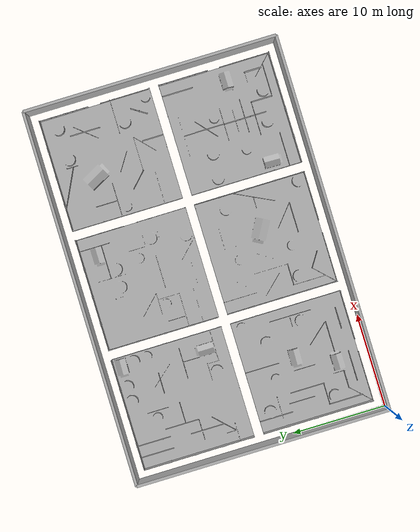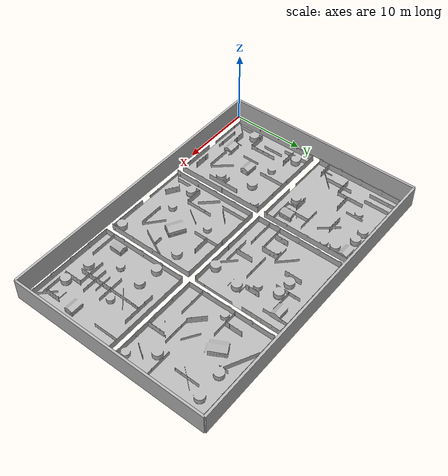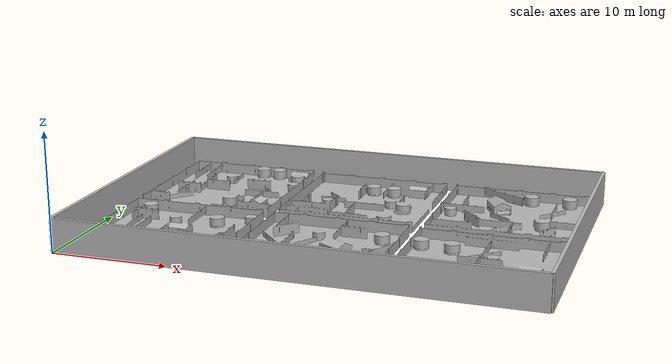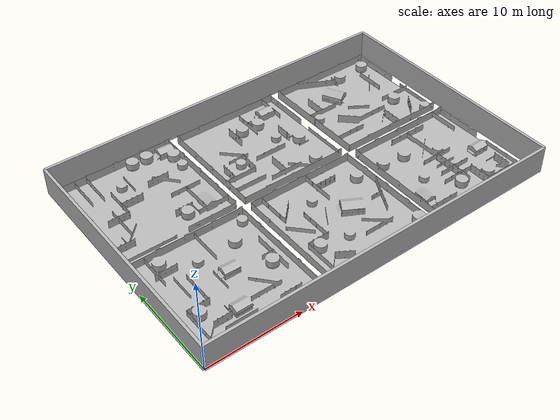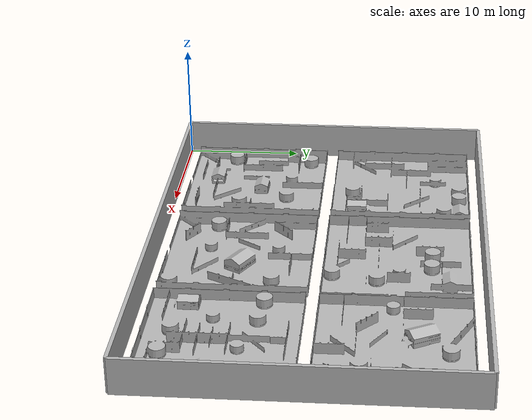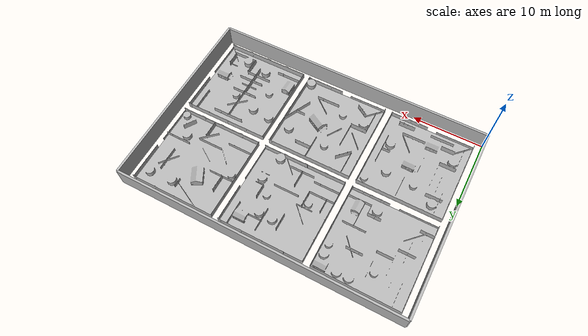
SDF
<?xml version='1.0' encoding='utf-8'?>
<sdf version="1.6">
  <world name="fixed_size_world">
    <include>
      <uri>model://sun</uri>
    </include>

<model name="10">
  <pose>7 7 0 0 0 1.5707963267948966</pose>
  <static>true</static>
  <link name="body">
    <visual name="visual">
      <geometry>
        <mesh>
          <uri>model://room10/meshes/room_10.dae</uri>
          <scale>0.1 0.1 0.1</scale>
        </mesh>
      </geometry>
    </visual>
    <collision name='collision'>
      <geometry>
        <mesh>
          <uri>model://room10/meshes/room_10.dae</uri>
          <scale>0.1 0.1 0.1</scale>
        </mesh>
      </geometry>
    </collision>
  </link>
</model>

<model name="11">
  <pose>20 7 0 0 0 1.5707963267948966</pose>
  <static>true</static>
  <link name="body">
    <visual name="visual">
      <geometry>
        <mesh>
          <uri>model://room11/meshes/room_11.dae</uri>
          <scale>0.1 0.1 0.1</scale>
        </mesh>
      </geometry>
    </visual>
    <collision name='collision'>
      <geometry>
        <mesh>
          <uri>model://room11/meshes/room_11.dae</uri>
          <scale>0.1 0.1 0.1</scale>
        </mesh>
      </geometry>
    </collision>
  </link>
</model>

<model name="9">
  <pose>33 7 0 0 0 3.141592653589793</pose>
  <static>true</static>
  <link name="body">
    <visual name="visual">
      <geometry>
        <mesh>
          <uri>model://room9/meshes/room_9.dae</uri>
          <scale>0.1 0.1 0.1</scale>
        </mesh>
      </geometry>
    </visual>
    <collision name='collision'>
      <geometry>
        <mesh>
          <uri>model://room9/meshes/room_9.dae</uri>
          <scale>0.1 0.1 0.1</scale>
        </mesh>
      </geometry>
    </collision>
  </link>
</model>

<model name="8">
  <pose>7 20 0 0 0 1.5707963267948966</pose>
  <static>true</static>
  <link name="body">
    <visual name="visual">
      <geometry>
        <mesh>
          <uri>model://room8/meshes/room_8.dae</uri>
          <scale>0.1 0.1 0.1</scale>
        </mesh>
      </geometry>
    </visual>
    <collision name='collision'>
      <geometry>
        <mesh>
          <uri>model://room8/meshes/room_8.dae</uri>
          <scale>0.1 0.1 0.1</scale>
        </mesh>
      </geometry>
    </collision>
  </link>
</model>

<model name="7">
  <pose>20 20 0 0 0 3.141592653589793</pose>
  <static>true</static>
  <link name="body">
    <visual name="visual">
      <geometry>
        <mesh>
          <uri>model://room7/meshes/room_7.dae</uri>
          <scale>0.1 0.1 0.1</scale>
        </mesh>
      </geometry>
    </visual>
    <collision name='collision'>
      <geometry>
        <mesh>
          <uri>model://room7/meshes/room_7.dae</uri>
          <scale>0.1 0.1 0.1</scale>
        </mesh>
      </geometry>
    </collision>
  </link>
</model>

<model name="12">
  <pose>33 20 0 0 0 3.141592653589793</pose>
  <static>true</static>
  <link name="body">
    <visual name="visual">
      <geometry>
        <mesh>
          <uri>model://room12/meshes/room_12.dae</uri>
          <scale>0.1 0.1 0.1</scale>
        </mesh>
      </geometry>
    </visual>
    <collision name='collision'>
      <geometry>
        <mesh>
          <uri>model://room12/meshes/room_12.dae</uri>
          <scale>0.1 0.1 0.1</scale>
        </mesh>
      </geometry>
    </collision>
  </link>
</model>

<model name="wall_90_0_13.5">
  <static>true</static>
  <link name="wall_link">
    <visual name="wall_visual">
      <geometry>
        <box>
          <size>27 0.3 3</size>
        </box>
      </geometry>
    </visual>
    <collision name="wall_collision">
      <geometry>
        <box>
          <size>27 0.3 3</size>
        </box>
      </geometry>
    </collision>
    <pose>0 13.5 1.5 0 0 1.5707963267948966</pose>
  </link>
</model>

<model name="wall_90_40_13.5">
  <static>true</static>
  <link name="wall_link">
    <visual name="wall_visual">
      <geometry>
        <box>
          <size>27 0.3 3</size>
        </box>
      </geometry>
    </visual>
    <collision name="wall_collision">
      <geometry>
        <box>
          <size>27 0.3 3</size>
        </box>
      </geometry>
    </collision>
    <pose>40 13.5 1.5 0 0 1.5707963267948966</pose>
  </link>
</model>

<model name="wall_0_20.0_0">
  <static>true</static>
  <link name="wall_link">
    <visual name="wall_visual">
      <geometry>
        <box>
          <size>40 0.3 3</size>
        </box>
      </geometry>
    </visual>
    <collision name="wall_collision">
      <geometry>
        <box>
          <size>40 0.3 3</size>
        </box>
      </geometry>
    </collision>
    <pose>20.0 0 1.5 0 0 0.0</pose>
  </link>
</model>

<model name="wall_0_20.0_27">
  <static>true</static>
  <link name="wall_link">
    <visual name="wall_visual">
      <geometry>
        <box>
          <size>40 0.3 3</size>
        </box>
      </geometry>
    </visual>
    <collision name="wall_collision">
      <geometry>
        <box>
          <size>40 0.3 3</size>
        </box>
      </geometry>
    </collision>
    <pose>20.0 27 1.5 0 0 0.0</pose>
  </link>
</model>

  </world>
</sdf>
